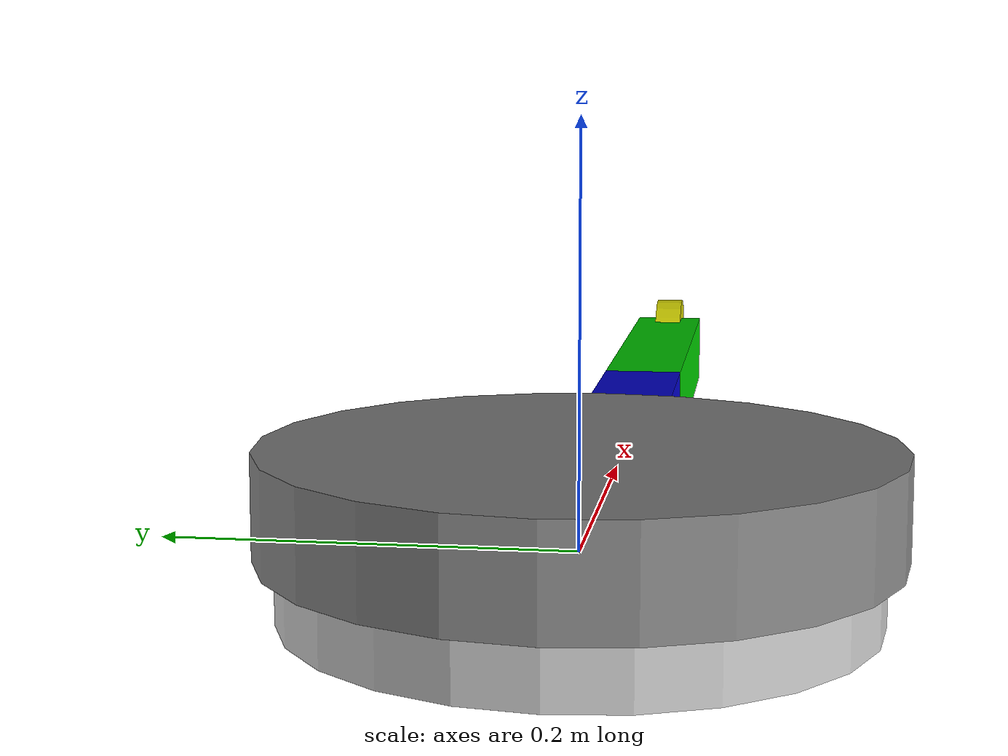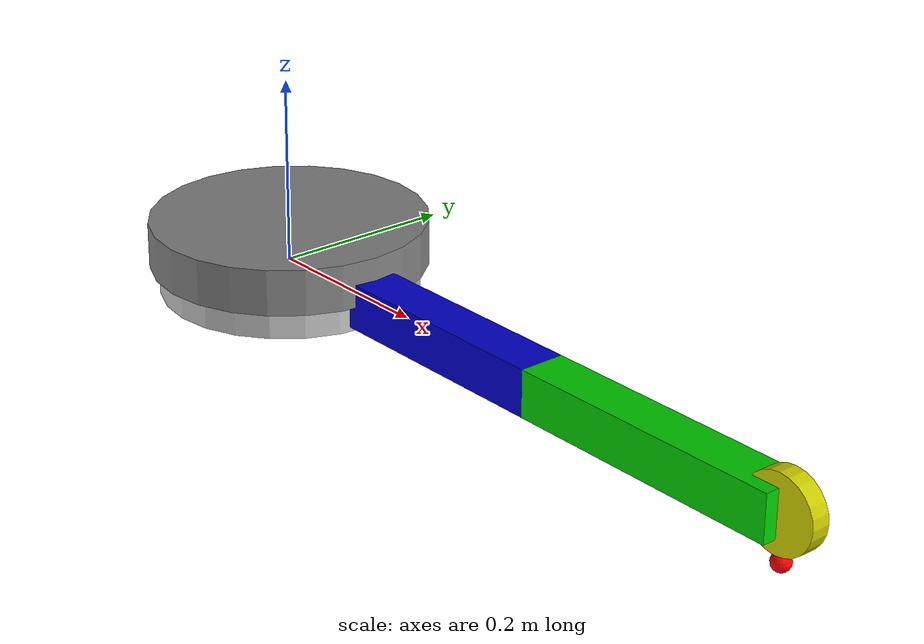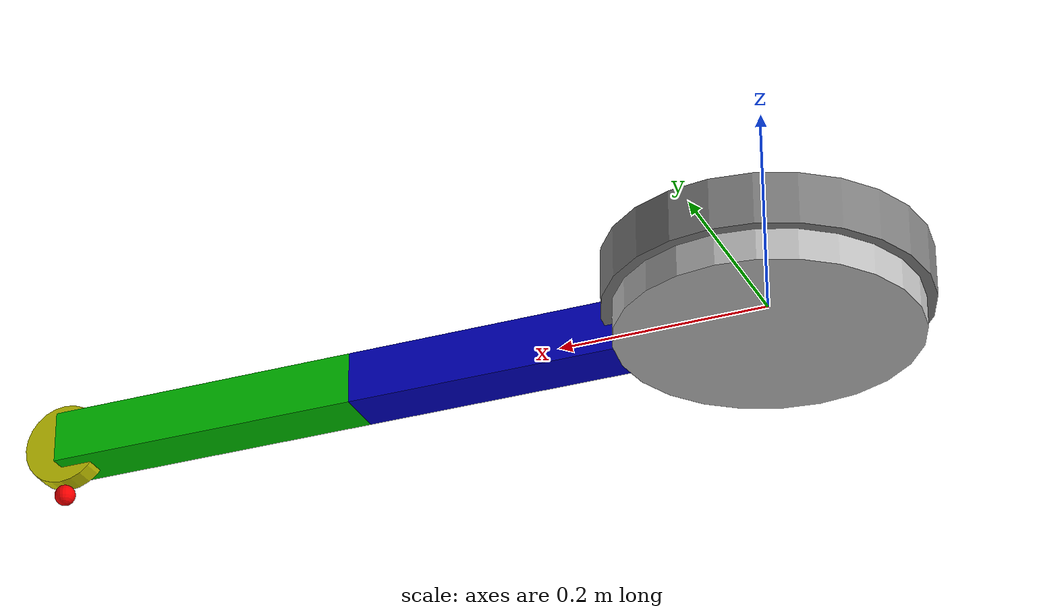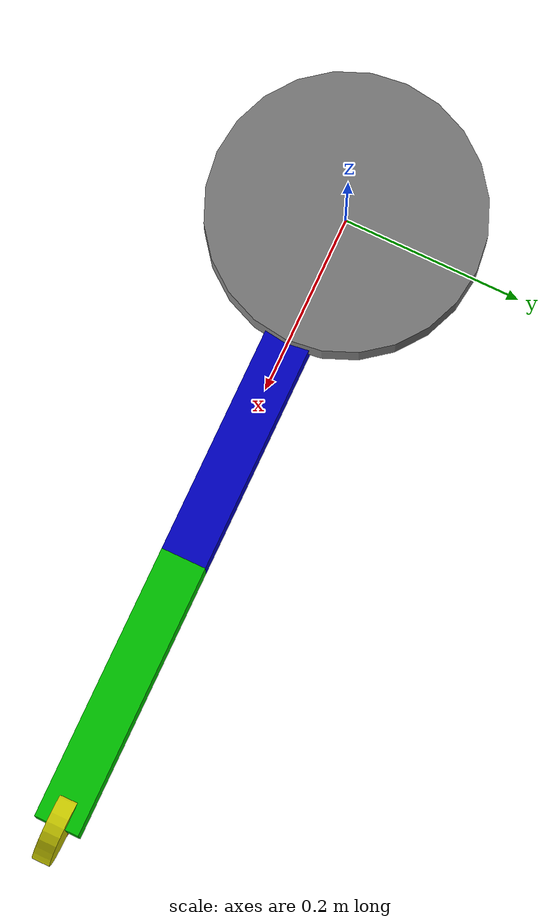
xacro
<?xml version="1.0"?>
<robot name="rprr_arm">

  <!--      Links        -->

  <!-- Base Link (固定基座) -->
  <link name="base_link">
    <visual>
      <origin xyz="0 0 0.025" rpy="0 0 0"/> <!-- 将圆柱中心放在link原点上方一半高度处 -->
      <geometry>
        <cylinder radius="0.15" length="0.05"/>
      </geometry>
      <material name="grey">
        <color rgba="0.5 0.5 0.5 1.0"/>
      </material>
    </visual>
    <collision>
        <origin xyz="0 0 0.025" rpy="0 0 0"/>
        <geometry>
            <cylinder radius="0.15" length="0.05"/>
        </geometry>
    </collision>
    <inertial>
      <!-- 惯性相对于 link origin (基座底部中心) -->
      <origin xyz="0 0 0.025" rpy="0 0 0"/> <!-- 质心位置 -->
      <mass value="10.0"/>
      <!-- 惯性张量 Ixx, Iyy, Izz, Ixy, Ixz, Iyz (估算值)-->
      <inertia ixx="0.06156" iyy="0.06156" izz="0.1125" ixy="0" ixz="0" iyz="0"/>
    </inertial>
  </link>

  <!-- Base Riser (垂直移动平台) -->
  <link name="base_riser">
    <visual>
       <origin xyz="0 0 -0.015" rpy="0 0 0"/> <!-- 将圆柱中心放在 link origin 下方 -->
       <geometry>
         <cylinder radius="0.14" length="0.03"/>
       </geometry>
       <material name="silver">
         <color rgba="0.75 0.75 0.75 1.0"/>
       </material>
    </visual>
     <collision>
       <origin xyz="0 0 -0.015" rpy="0 0 0"/>
       <geometry>
         <cylinder radius="0.14" length="0.03"/>
       </geometry>
    </collision>
    <inertial>
      <!-- 惯性相对于 link origin (J2/J1 轴线与平台顶面交点) -->
      <origin xyz="0 0 -0.015" rpy="0 0 0"/> <!-- 质心位置 -->
      <mass value="5.0"/>
      <inertia ixx="0.02556" iyy="0.02556" izz="0.049" ixy="0" ixz="0" iyz="0"/>
    </inertial>
  </link>

  <!-- Link 1 (J1 -> J3) -->
  <link name="link1">
    <visual>
      <origin xyz="0.2 0 0" rpy="0 0 0"/> <!-- 将长方体中心放在连杆中间 -->
      <geometry>
        <box size="0.4 0.05 0.05"/>
      </geometry>
      <material name="blue">
        <color rgba="0 0 0.8 1.0"/>
      </material>
    </visual>
     <collision>
      <origin xyz="0.2 0 0" rpy="0 0 0"/>
      <geometry>
        <box size="0.4 0.05 0.05"/>
      </geometry>
    </collision>
    <inertial>
      <!-- 惯性相对于 link origin (J1 轴线) -->
      <origin xyz="0.2 0 0" rpy="0 0 0"/> <!-- 质心位置 -->
      <mass value="3.0"/>
      <!-- 使用平行轴定理 I_origin = I_com + m*skew(r_com)^T*skew(r_com) -->
      <!-- Ixx_o = Ixx_c + m*(ry^2+rz^2) = 0.001 + 3*(0^2+0^2) = 0.001 -->
      <!-- Iyy_o = Iyy_c + m*(rx^2+rz^2) = 0.04 + 3*(0.2^2+0^2) = 0.04 + 0.12 = 0.16 -->
      <!-- Izz_o = Izz_c + m*(rx^2+ry^2) = 0.04 + 3*(0.2^2+0^2) = 0.16 -->
      <inertia ixx="0.001" iyy="0.16" izz="0.16" ixy="0" ixz="0" iyz="0"/>
    </inertial>
  </link>

  <!-- Link 2 (J3 -> J4) -->
  <link name="link2">
    <visual>
      <origin xyz="0.1535 0 0" rpy="0 0 0"/> <!-- 长方体中心 -->
      <geometry>
        <box size="0.307 0.05 0.05"/>
      </geometry>
      <material name="green">
        <color rgba="0 0.8 0 1.0"/>
      </material>
    </visual>
     <collision>
      <origin xyz="0.1535 0 0" rpy="0 0 0"/>
      <geometry>
        <box size="0.307 0.05 0.05"/>
      </geometry>
    </collision>
    <inertial>
      <!-- 惯性相对于 link origin (J3 轴线) -->
      <origin xyz="0.1535 0 0" rpy="0 0 0"/> <!-- 质心位置 -->
      <mass value="2.0"/>
      <!-- Iyy_o = 0.016 + 2*(0.1535^2) = 0.016 + 0.0471 = 0.0631 -->
      <!-- Izz_o = 0.016 + 2*(0.1535^2) = 0.0631 -->
      <inertia ixx="0.001" iyy="0.0631" izz="0.0631" ixy="0" ixz="0" iyz="0"/>
    </inertial>
  </link>

  <!-- Link 3 (垂直圆盘或安装法兰 @ J4) -->
  <link name="link3">
    <visual>
      <!-- 假设圆盘中心在 J4 轴线上，并且圆盘面平行于 YZ 平面 (绕 X 轴转 90 度) -->
      <origin xyz="0 0 0" rpy="1.5708 0 0"/> <!-- 绕 X 轴转 pi/2 -->
      <geometry>
        <cylinder radius="0.04" length="0.02"/> <!-- 半径 40mm, 厚度 20mm -->
      </geometry>
      <material name="yellow">
        <color rgba="0.8 0.8 0 1.0"/>
      </material>
    </visual>
     <collision>
      <origin xyz="0 0 0" rpy="1.5708 0 0"/>
      <geometry>
        <cylinder radius="0.04" length="0.02"/>
      </geometry>
    </collision>
    <inertial>
      <!-- 惯性相对于 link origin (J4 轴线) -->
      <origin xyz="0 0 0" rpy="0 0 0"/> <!-- 假设质心就在 J4 轴线上 -->
      <mass value="0.5"/>
      <!-- 估算垂直圆盘绕 Link Origin (J4轴) 的惯性张量 -->
      <!-- 这里的估算比较粗略，依赖于圆盘方向和具体形状 -->
      <inertia ixx="0.0002" iyy="0.0002" izz="0.0004" ixy="0" ixz="0" iyz="0"/>
    </inertial>
  </link>

  <!-- TCP Link (逻辑点，带可视化) -->
  <link name="tcp_link">
     <visual>
       <origin xyz="0 0 0" rpy="0 0 0"/> <!-- 小球中心在 TCP 点 -->
       <geometry>
         <sphere radius="0.01"/> <!-- 10mm 半径 -->
       </geometry>
       <material name="red">
         <color rgba="1.0 0 0 1.0"/>
       </material>
     </visual>
     <collision> <!-- 通常 TCP 不设置碰撞 -->
       <origin xyz="0 0 0" rpy="0 0 0"/>
       <geometry>
         <sphere radius="0.01"/>
       </geometry>
     </collision>
     <inertial>
       <!-- TCP 通常设为无质量或极小质量 -->
       <origin xyz="0 0 0" rpy="0 0 0"/>
       <mass value="0.01"/> <!-- 设一个很小的值避免求解器问题 -->
       <inertia ixx="1e-6" iyy="1e-6" izz="1e-6" ixy="0" ixz="0" iyz="0"/>
     </inertial>
  </link>

  <!--      Joints       -->

  <!-- Joint 2: Prismatic (Base -> BaseRiser) -->
  <joint name="jnt2" type="prismatic">
    <parent link="base_link"/>
    <child link="base_riser"/>
    <origin xyz="0 0 0" rpy="0 0 0"/> <!-- 关节位于 base_link 原点 -->
    <axis xyz="0 0 1"/> <!-- 沿 Z 轴移动 -->
    <limit lower="0.0" upper="0.33" effort="250" velocity="0.167"/> <!-- effort(力), velocity(速度) -->
    <dynamics damping="1.0" friction="0.5"/> <!-- 可选的动力学参数: 阻尼和摩擦 -->
  </joint>

  <!-- Joint 1: Revolute (BaseRiser -> Link1) -->
  <joint name="jnt1" type="revolute">
    <parent link="base_riser"/>
    <child link="link1"/>
    <origin xyz="0 0 0" rpy="0 0 0"/> <!-- 关节位于 base_riser 原点 -->
    <axis xyz="0 0 1"/> <!-- 绕 Z 轴旋转 -->
    <limit lower="-3.14159" upper="3.14159" effort="15" velocity="10.47"/> <!-- rad, N·m, rad/s -->
     <dynamics damping="0.1" friction="0.1"/>
  </joint>

  <!-- Joint 3: Revolute (Link1 -> Link2) -->
  <joint name="jnt3" type="revolute">
    <parent link="link1"/>
    <child link="link2"/>
    <origin xyz="0.4 0 0" rpy="0 0 0"/> <!-- 关节位于 link1 的 X=L1 处 -->
    <axis xyz="0 0 1"/> <!-- 绕 Z 轴旋转 -->
    <limit lower="-2.61799" upper="2.61799" effort="40" velocity="3.49"/> <!-- -150 to +150 deg in rad -->
     <dynamics damping="0.1" friction="0.1"/>
  </joint>

  <!-- Joint 4: Revolute (Link2 -> Link3) -->
  <joint name="jnt4" type="revolute">
    <parent link="link2"/>
    <child link="link3"/>
    <origin xyz="0.307 0 0" rpy="0 0 0"/> <!-- 关节位于 link2 的 X=L2 处 -->
    <axis xyz="0 0 1"/> <!-- 绕 Z 轴旋转 -->
    <limit lower="-3.14159" upper="3.14159" effort="12" velocity="11.64"/>
     <dynamics damping="0.1" friction="0.1"/>
  </joint>

  <!-- Fixed Joint: TCP (Link3 -> TCP Link) -->
  <joint name="jnt_tcp" type="fixed">
    <parent link="link3"/>
    <child link="tcp_link"/>
    <origin xyz="0 0 -0.05" rpy="0 0 0"/> <!-- TCP 相对于 Link3 原点 (J4轴) 的偏移 -->
  </joint>

</robot>
